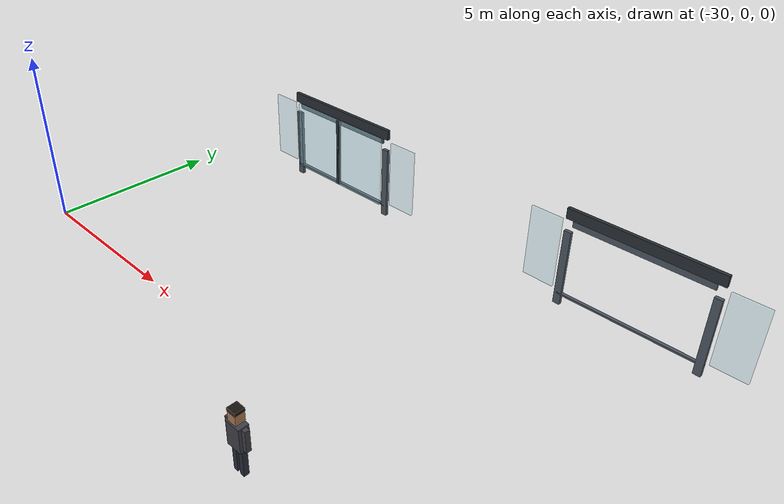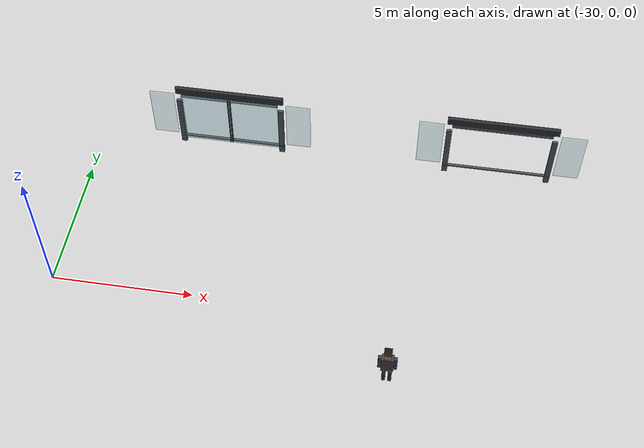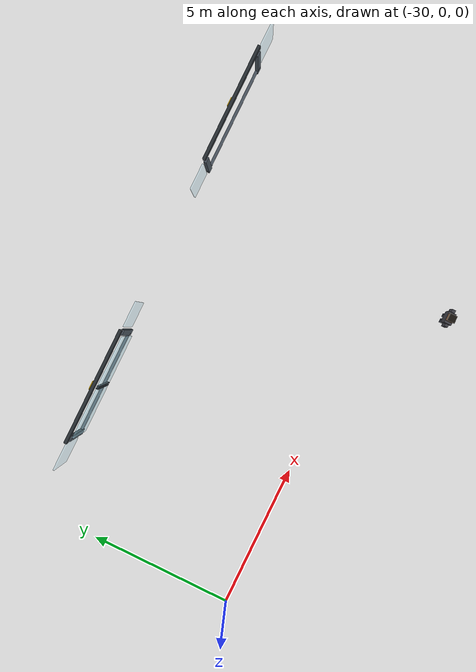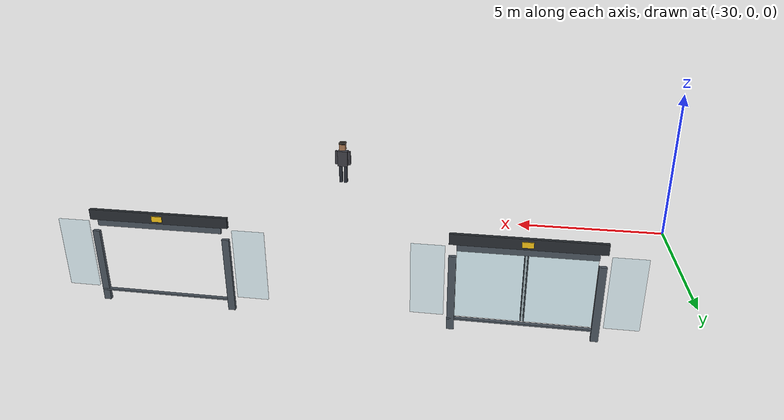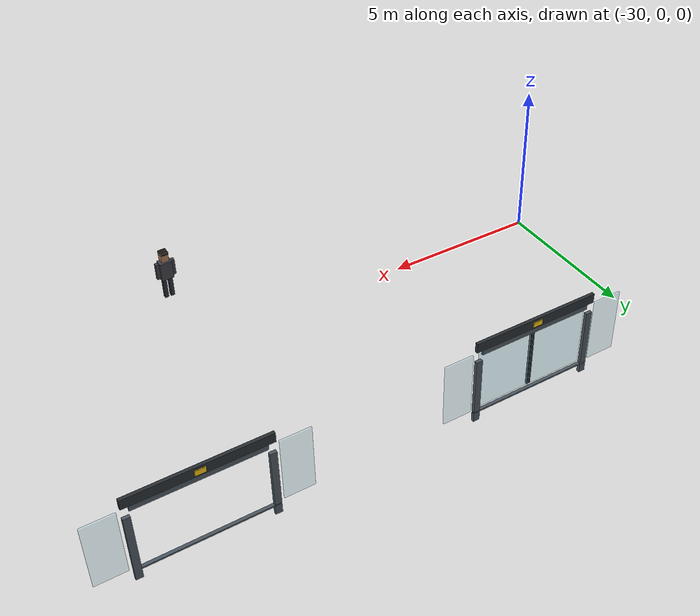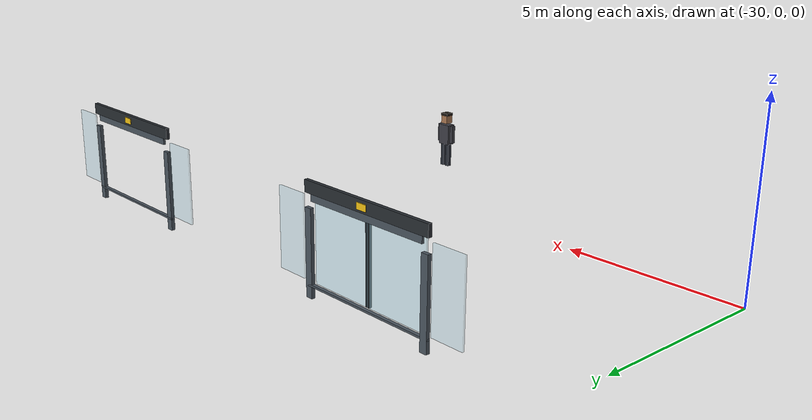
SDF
<sdf version="1.8">
 <world name="metro_station">
  <model name="psd_unit_04">
   <static>true</static>
   <pose>-25.0 0 0 0 0 0</pose>
   <link name="psd_frame_04">
    <collision name="psd_post_left_col_04">
     <pose>-1.90 7.02 1.10 0 0 0</pose>
     <geometry><box><size>0.20 0.10 2.20</size></box></geometry>
    </collision>
    <collision name="psd_post_right_col_04">
     <pose>1.90 7.02 1.10 0 0 0</pose>
     <geometry><box><size>0.20 0.10 2.20</size></box></geometry>
    </collision>
    <collision name="psd_header_col_04">
     <pose>0 7.02 2.70 0 0 0</pose>
     <geometry><box><size>4.00 0.10 0.30</size></box></geometry>
    </collision>
    <collision name="psd_threshold_col_04">
     <pose>0 7.02 0.325 0 0 0</pose>
     <geometry><box><size>4.00 0.10 0.05</size></box></geometry>
    </collision>
    <visual name="psd_post_left_vis_04">
     <pose>-1.90 7.02 1.10 0 0 0</pose>
     <geometry><box><size>0.20 0.10 2.20</size></box></geometry>
     <material>
      <ambient>0.22 0.25 0.28 1</ambient>
      <diffuse>0.30 0.34 0.38 1</diffuse>
      <specular>0.35 0.35 0.35 1</specular>
     </material>
    </visual>
    <visual name="psd_post_right_vis_04">
     <pose>1.90 7.02 1.10 0 0 0</pose>
     <geometry><box><size>0.20 0.10 2.20</size></box></geometry>
     <material>
      <ambient>0.22 0.25 0.28 1</ambient>
      <diffuse>0.30 0.34 0.38 1</diffuse>
      <specular>0.35 0.35 0.35 1</specular>
     </material>
    </visual>
    <visual name="psd_header_vis_04">
     <pose>0 7.02 2.70 0 0 0</pose>
     <geometry><box><size>4.00 0.10 0.30</size></box></geometry>
     <material><ambient>0.10 0.12 0.14 1</ambient><diffuse>0.16 0.18 0.20 1</diffuse></material>
    </visual>
    <visual name="psd_threshold_vis_04">
     <pose>0 7.02 0.325 0 0 0</pose>
     <geometry><box><size>4.00 0.10 0.05</size></box></geometry>
     <material>
      <ambient>0.22 0.25 0.28 1</ambient>
      <diffuse>0.30 0.34 0.38 1</diffuse>
      <specular>0.35 0.35 0.35 1</specular>
     </material>
    </visual>
    <visual name="psd_glass_left_vis_04">
     <pose>-2.55 7.02 1.45 0 0 0</pose>
     <transparency>0.65</transparency>
     <geometry><box><size>0.90 0.05 2.05</size></box></geometry>
     <material><ambient>0.55 0.75 0.82 1</ambient><diffuse>0.65 0.85 0.92 1</diffuse></material>
    </visual>
    <visual name="psd_glass_right_vis_04">
     <pose>2.55 7.02 1.45 0 0 0</pose>
     <transparency>0.65</transparency>
     <geometry><box><size>0.90 0.05 2.05</size></box></geometry>
     <material><ambient>0.55 0.75 0.82 1</ambient><diffuse>0.65 0.85 0.92 1</diffuse></material>
    </visual>
    <visual name="psd_unit_label_vis_04">
     <pose>0 7.10 2.70 0 0 0</pose>
     <geometry><box><size>0.30 0.02 0.16</size></box></geometry>
     <material>
      <ambient>0.95 0.72 0.04 1</ambient>
      <diffuse>0.98 0.78 0.08 1</diffuse>
      <emissive>0.35 0.25 0.02 1</emissive>
     </material>
    </visual>
    <visual name="psd_upper_panel_vis_04">
     <pose>0 7.02 2.46 0 0 0</pose>
     <geometry><box><size>3.60 0.06 0.18</size></box></geometry>
     <material>
      <ambient>0.22 0.25 0.28 1</ambient>
      <diffuse>0.30 0.34 0.38 1</diffuse>
      <specular>0.35 0.35 0.35 1</specular>
     </material>
    </visual>
   </link>
  </model>
  <model name="psd_unit_05">
   <static>true</static>
   <pose>-15.0 0 0 0 0 0</pose>
   <link name="psd_frame_05">
    <collision name="psd_post_left_col_05">
     <pose>-1.90 7.02 1.10 0 0 0</pose>
     <geometry><box><size>0.20 0.10 2.20</size></box></geometry>
    </collision>
    <collision name="psd_post_right_col_05">
     <pose>1.90 7.02 1.10 0 0 0</pose>
     <geometry><box><size>0.20 0.10 2.20</size></box></geometry>
    </collision>
    <collision name="psd_header_col_05">
     <pose>0 7.02 2.70 0 0 0</pose>
     <geometry><box><size>4.00 0.10 0.30</size></box></geometry>
    </collision>
    <collision name="psd_threshold_col_05">
     <pose>0 7.02 0.325 0 0 0</pose>
     <geometry><box><size>4.00 0.10 0.05</size></box></geometry>
    </collision>
    <visual name="psd_post_left_vis_05">
     <pose>-1.90 7.02 1.10 0 0 0</pose>
     <geometry><box><size>0.20 0.10 2.20</size></box></geometry>
     <material>
      <ambient>0.22 0.25 0.28 1</ambient>
      <diffuse>0.30 0.34 0.38 1</diffuse>
      <specular>0.35 0.35 0.35 1</specular>
     </material>
    </visual>
    <visual name="psd_post_right_vis_05">
     <pose>1.90 7.02 1.10 0 0 0</pose>
     <geometry><box><size>0.20 0.10 2.20</size></box></geometry>
     <material>
      <ambient>0.22 0.25 0.28 1</ambient>
      <diffuse>0.30 0.34 0.38 1</diffuse>
      <specular>0.35 0.35 0.35 1</specular>
     </material>
    </visual>
    <visual name="psd_header_vis_05">
     <pose>0 7.02 2.70 0 0 0</pose>
     <geometry><box><size>4.00 0.10 0.30</size></box></geometry>
     <material><ambient>0.10 0.12 0.14 1</ambient><diffuse>0.16 0.18 0.20 1</diffuse></material>
    </visual>
    <visual name="psd_threshold_vis_05">
     <pose>0 7.02 0.325 0 0 0</pose>
     <geometry><box><size>4.00 0.10 0.05</size></box></geometry>
     <material>
      <ambient>0.22 0.25 0.28 1</ambient>
      <diffuse>0.30 0.34 0.38 1</diffuse>
      <specular>0.35 0.35 0.35 1</specular>
     </material>
    </visual>
    <visual name="psd_glass_left_vis_05">
     <pose>-2.55 7.02 1.45 0 0 0</pose>
     <transparency>0.65</transparency>
     <geometry><box><size>0.90 0.05 2.05</size></box></geometry>
     <material><ambient>0.55 0.75 0.82 1</ambient><diffuse>0.65 0.85 0.92 1</diffuse></material>
    </visual>
    <visual name="psd_glass_right_vis_05">
     <pose>2.55 7.02 1.45 0 0 0</pose>
     <transparency>0.65</transparency>
     <geometry><box><size>0.90 0.05 2.05</size></box></geometry>
     <material><ambient>0.55 0.75 0.82 1</ambient><diffuse>0.65 0.85 0.92 1</diffuse></material>
    </visual>
    <visual name="psd_unit_label_vis_05">
     <pose>0 7.10 2.70 0 0 0</pose>
     <geometry><box><size>0.30 0.02 0.16</size></box></geometry>
     <material>
      <ambient>0.95 0.72 0.04 1</ambient>
      <diffuse>0.98 0.78 0.08 1</diffuse>
      <emissive>0.35 0.25 0.02 1</emissive>
     </material>
    </visual>
    <visual name="psd_upper_panel_vis_05">
     <pose>0 7.02 2.46 0 0 0</pose>
     <geometry><box><size>3.60 0.06 0.18</size></box></geometry>
     <material>
      <ambient>0.22 0.25 0.28 1</ambient>
      <diffuse>0.30 0.34 0.38 1</diffuse>
      <specular>0.35 0.35 0.35 1</specular>
     </material>
    </visual>
   </link>
  </model>
  <model name="psd_door_04">
   <static>false</static>
   <allow_auto_disable>false</allow_auto_disable>
   <pose>-25.0 0 0 0 0 0</pose>
   <link name="psd_base_04">
    <inertial>
     <mass>1.0</mass>
     <inertia><ixx>0.001</ixx><ixy>0</ixy><ixz>0</ixz><iyy>0.001</iyy><iyz>0</iyz><izz>0.001</izz></inertia>
    </inertial>
   </link>
   <link name="psd_left_04">
    <pose>-0.90 6.90 1.45 0 0 0</pose>
    <inertial>
     <mass>120.0</mass>
     <inertia><ixx>48.436</ixx><ixy>0</ixy><ixz>0</ixz><iyy>80.800</iyy><iyz>0</iyz><izz>32.436</izz></inertia>
    </inertial>
    <collision name="psd_left_col_04"><geometry><box><size>1.80 0.06 2.20</size></box></geometry></collision>
    <visual name="psd_left_vis_04">
     <transparency>0.6</transparency>
     <geometry><box><size>1.80 0.06 2.20</size></box></geometry>
     <material><ambient>0.55 0.78 0.85 1</ambient><diffuse>0.65 0.88 0.95 1</diffuse></material>
    </visual>
    <visual name="psd_left_edge_vis_04">
     <pose>0.86 0 0 0 0 0</pose>
     <geometry><box><size>0.03 0.08 2.20</size></box></geometry>
     <material><ambient>0.15 0.18 0.20 1</ambient><diffuse>0.22 0.25 0.28 1</diffuse></material>
    </visual>
   </link>
   <link name="psd_right_04">
    <pose>0.90 6.90 1.45 0 0 0</pose>
    <inertial>
     <mass>120.0</mass>
     <inertia><ixx>48.436</ixx><ixy>0</ixy><ixz>0</ixz><iyy>80.800</iyy><iyz>0</iyz><izz>32.436</izz></inertia>
    </inertial>
    <collision name="psd_right_col_04"><geometry><box><size>1.80 0.06 2.20</size></box></geometry></collision>
    <visual name="psd_right_vis_04">
     <transparency>0.6</transparency>
     <geometry><box><size>1.80 0.06 2.20</size></box></geometry>
     <material><ambient>0.55 0.78 0.85 1</ambient><diffuse>0.65 0.88 0.95 1</diffuse></material>
    </visual>
    <visual name="psd_right_edge_vis_04">
     <pose>-0.86 0 0 0 0 0</pose>
     <geometry><box><size>0.03 0.08 2.20</size></box></geometry>
     <material><ambient>0.15 0.18 0.20 1</ambient><diffuse>0.22 0.25 0.28 1</diffuse></material>
    </visual>
   </link>
   <joint name="psd_base_fixed_04" type="fixed"><parent>world</parent><child>psd_base_04</child></joint>
   <joint name="psd_left_joint_04" type="prismatic">
    <parent>psd_base_04</parent>
    <child>psd_left_04</child>
    <axis>
     <xyz>1 0 0</xyz>
     <limit><lower>-1.80</lower><upper>0.0</upper><effort>5000.0</effort><velocity>1.0</velocity></limit>
     <dynamics><damping>2.0</damping><friction>0.2</friction></dynamics>
    </axis>
   </joint>
   <joint name="psd_right_joint_04" type="prismatic">
    <parent>psd_base_04</parent>
    <child>psd_right_04</child>
    <axis>
     <xyz>1 0 0</xyz>
     <limit><lower>0.0</lower><upper>1.80</upper><effort>5000.0</effort><velocity>1.0</velocity></limit>
     <dynamics><damping>2.0</damping><friction>0.2</friction></dynamics>
    </axis>
   </joint>
  </model>
  <model name="passenger_05">
   <static>true</static>
   <allow_auto_disable>false</allow_auto_disable>
   <pose>-18.0 -2.40 0.30 0 0 0</pose>
   <link name="passenger_body_05">
    <visual name="leg_left_05">
     <pose>-0.10 0 0.36 0 0 0</pose>
     <geometry><box><size>0.12 0.13 0.72</size></box></geometry>
     <material><ambient>0.10 0.12 0.16 1</ambient><diffuse>0.16 0.18 0.22 1</diffuse></material>
    </visual>
    <visual name="leg_right_05">
     <pose>0.10 0 0.36 0 0 0</pose>
     <geometry><box><size>0.12 0.13 0.72</size></box></geometry>
     <material><ambient>0.10 0.12 0.16 1</ambient><diffuse>0.16 0.18 0.22 1</diffuse></material>
    </visual>
    <visual name="torso_05">
     <pose>0 0 1.02 0 0 0</pose>
     <geometry><box><size>0.40 0.26 0.62</size></box></geometry>
     <material><ambient>0.18 0.18 0.20 1</ambient><diffuse>0.25 0.25 0.28 1</diffuse></material>
    </visual>
    <visual name="head_05">
     <pose>0 0 1.52 0 0 0</pose>
     <geometry><box><size>0.24 0.24 0.28</size></box></geometry>
     <material><ambient>0.55 0.38 0.26 1</ambient><diffuse>0.68 0.48 0.33 1</diffuse></material>
    </visual>
    <visual name="hair_05">
     <pose>0 0 1.66 0 0 0</pose>
     <geometry><box><size>0.25 0.25 0.08</size></box></geometry>
     <material><ambient>0.06 0.05 0.04 1</ambient><diffuse>0.10 0.08 0.06 1</diffuse></material>
    </visual>
    <visual name="arm_left_05">
     <pose>-0.26 0 1.04 0 0 0</pose>
     <geometry><box><size>0.10 0.12 0.55</size></box></geometry>
     <material><ambient>0.18 0.18 0.20 1</ambient><diffuse>0.25 0.25 0.28 1</diffuse></material>
    </visual>
    <visual name="arm_right_05">
     <pose>0.26 0 1.04 0 0 0</pose>
     <geometry><box><size>0.10 0.12 0.55</size></box></geometry>
     <material><ambient>0.18 0.18 0.20 1</ambient><diffuse>0.25 0.25 0.28 1</diffuse></material>
    </visual>
   </link>
  </model>
 </world>
</sdf>
